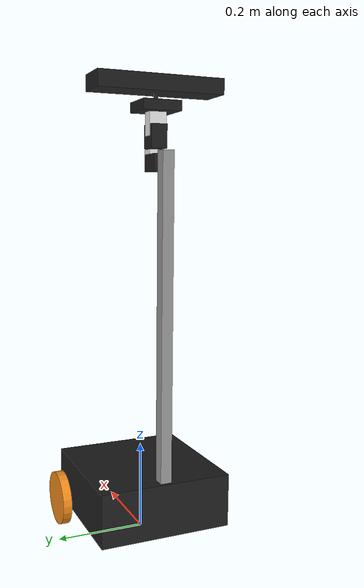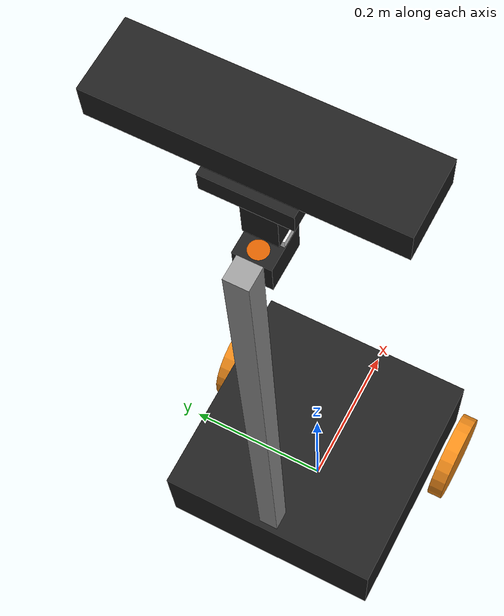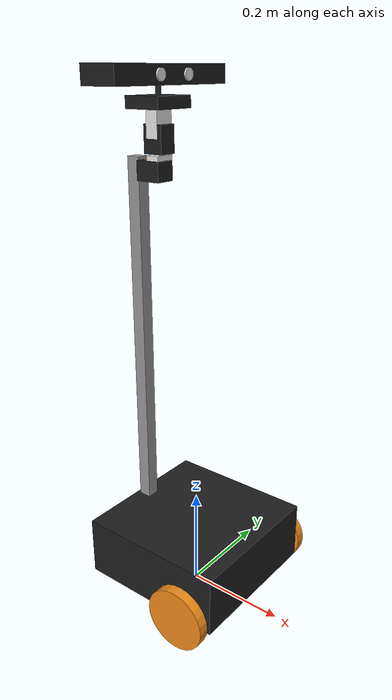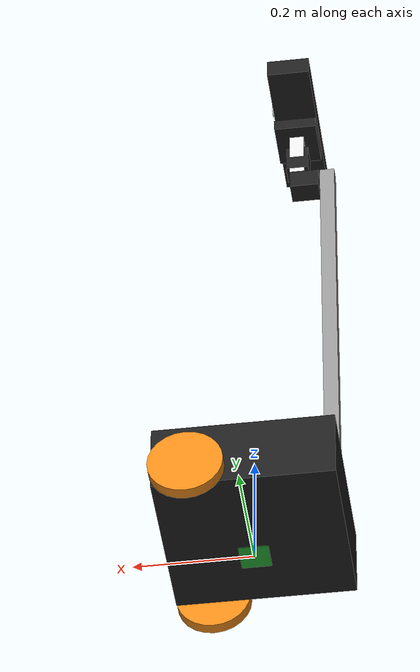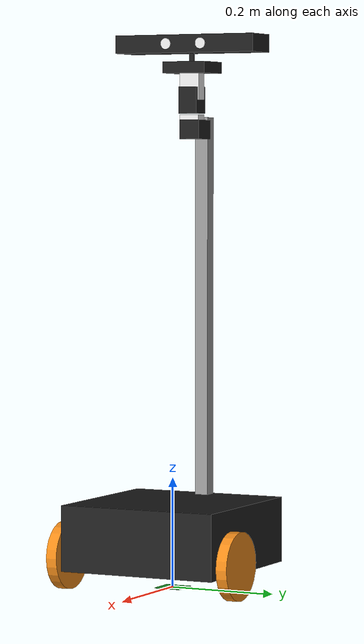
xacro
<?xml version="1.0"?>

<robot name="box_robot" xmlns:xacro="http://ros.org/wiki/xacro">

   <!-- Define a number of dimensions using properties -->
   <property name="torso_offset_x" value="-0.13" />
   <property name="torso_offset_y" value="0.0" />
   <property name="torso_offset_z" value="0.41" />

   <property name="head_offset_x" value="0.0275" />
   <property name="head_offset_y" value="0.0" />
   <property name="head_offset_z" value="0.345" />

   <!-- Include all component files -->
   <xacro:include filename="$(find rbx2_description)/urdf/materials.urdf.xacro" />
   <xacro:include filename="$(find rbx2_description)/urdf/box_robot/base.urdf.xacro" />
   <xacro:include filename="$(find rbx2_description)/urdf/box_robot/torso.urdf.xacro" />
   <xacro:include filename="$(find rbx2_description)/urdf/box_robot/box_pan_tilt_head.urdf.xacro" />

   <!-- Add the base and wheels -->
   <base name="base" color="Black"/>

   <!-- Attach the torso -->
   <torso name="torso" parent="base" color="Grey">
      <origin xyz="${torso_offset_x} ${torso_offset_y} ${torso_offset_z}" rpy="0 0 0" />
   </torso>

   <!-- Attach the pan and tilt head -->
   <head name="head_base" parent="torso" color="White">
      <origin xyz="${head_offset_x} ${head_offset_y} ${head_offset_z}" rpy="0 0 ${PI}" />
   </head>

</robot>

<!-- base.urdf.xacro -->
<robot name="base" xmlns:xacro="http://ros.org/wiki/xacro">

  <!-- Define a number of dimensions using properties -->
  <property name="base_size_x" value="0.30" />
  <property name="base_size_y" value="0.30" />
  <property name="base_size_z" value="0.12" />
  <property name="wheel_length" value="0.02032" />
  <property name="wheel_radius" value="0.06191" />
  <property name="wheel_offset_x" value="0.09" />
  <property name="wheel_offset_y" value="0.17" />
  <property name="wheel_offset_z" value="-0.038" />

  <property name="PI" value="3.1415" />

  <!-- define a wheel -->
  <macro name="wheel" params="suffix parent reflect color">
    <joint name="${parent}_${suffix}_wheel_joint" type="continuous">
      <axis xyz="0 0 1" />
      <limit effort="100" velocity="100"/>
      <safety_controller k_velocity="10" />
      <origin xyz="${wheel_offset_x} ${reflect*wheel_offset_y} ${wheel_offset_z}" rpy="${reflect*PI/2} 0 0" />
      <parent link="${parent}_link"/>
      <child link="${parent}_${suffix}_wheel_link"/>
    </joint>
    <link name="${parent}_${suffix}_wheel_link">
      <visual>
        <origin xyz="0 0 0" rpy="0 0 0" />
        <geometry>
          <cylinder radius="${wheel_radius}" length="${wheel_length}"/>
        </geometry>
        <material name="${color}" />
      </visual>
    </link>
  </macro>

  <!-- The base xacro macro -->
  <macro name="base" params="name color">
    <link name="${name}_link">
      <visual>
        <origin xyz="0 0 0" rpy="0 0 0" />
        <geometry>
          <box size="${base_size_x} ${base_size_y} ${base_size_z}" />
        </geometry>
        <material name="${color}" />
      </visual>
      <collision>
        <origin xyz="0 0 0" rpy="0 0 0" />
        <geometry>
          <box size="${base_size_x} ${wheel_offset_y*2 + wheel_length} ${base_size_z}" />
        </geometry>
      </collision>
    </link>
  </macro>

  <link name="base_footprint">
      <visual>
        <origin xyz="0 0 0" rpy="0 0 0" />
        <geometry>
          <box size="0.05 0.05 0.001" />
        </geometry>
        <material name="TransparentGreen" />
      </visual>
  </link>

  <joint name="base_joint" type="fixed">
    <origin xyz="0 0 ${base_size_z/2 - wheel_offset_z}" rpy="0 0 0" />
    <parent link="base_footprint"/>
    <child link="base_link" />
  </joint>

   <!-- Add the drive wheels -->
   <wheel parent="base" suffix="l" reflect="1" color="Orange"/>
   <wheel parent="base" suffix="r" reflect="-1" color="Orange"/>

</robot>

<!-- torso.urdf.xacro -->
<robot name="torso" xmlns:xacro="http://ros.org/wiki/xacro">

  <!-- Define a number of dimensions using properties -->
  <property name="torso_size_x" value="0.0254" />
  <property name="torso_size_y" value="0.0254" />
  <property name="torso_size_z" value="0.7" />

  <!-- Define the torso -->
  <macro name="torso" params="parent name color *origin">
    <joint name="${parent}_${name}_joint" type="fixed">
      <xacro:insert_block name="origin" />
      <parent link="${parent}_link"/>
      <child link="${name}_link"/>
    </joint>
    <link name="${name}_link">
      <visual>
        <origin xyz="0 0 0" rpy="0 0 0" />
        <geometry>
          <box size="${torso_size_x} ${torso_size_y} ${torso_size_z}" />
        </geometry>
        <material name="${color}" />
      </visual>
      <collision>
        <origin xyz="0 0 0" rpy="0 0 0" />
        <geometry>
          <box size="${torso_size_x} ${torso_size_y} ${torso_size_z}" />
        </geometry>
      </collision>
    </link>
  </macro>

</robot>

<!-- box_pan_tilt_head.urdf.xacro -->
<robot name="pan_tilt_head" xmlns:xacro="http://ros.org/wiki/xacro">

  <property name="camera_offset_x" value="0.0" />
  <property name="camera_offset_y" value="0.0" />
  <property name="camera_offset_z" value="0.0345" />

  <xacro:include filename="$(find rbx2_description)/urdf/box_robot/dynamixel_box_head_hardware.xacro" />
  <xacro:include filename="$(find rbx2_description)/urdf/box_robot/kinect_box.urdf.xacro" />

  <!-- The head macro includes the pan and tilt servos with the camera attached to the head_tilt_bracket link -->
  <macro name="head" params="parent name color *origin">
    <!-- head base joint -->
    <joint name="${name}_joint" type="fixed">
      <xacro:insert_block name="origin" />
      <parent link="${parent}_link"/>
      <child link="${name}_link" />
    </joint>
    <link name="${name}_link">
      <origin xyz="0 0 0" rpy="0 0 0" />
      <inertial>
        <mass value="0.00001" />
        <inertia ixx="1.0" ixy="0.0" ixz="0.0"
          iyy="1.0" iyz="0.0"
          izz="1.0" />
      </inertial>

      <visual>
        <origin xyz="0 0 0 " rpy="0 0 0" />
        <geometry>
           <cylinder length="0.00001" radius="0.01" />
        </geometry>
      </visual>

      <collision>
        <origin xyz="0 0 0 " rpy="0 0 0" />
        <geometry>
           <cylinder length="0.00001" radius="0.01" />
        </geometry>
      </collision>
    </link>

    <!-- head pan -->
    <dynamixel_AX12_fixed parent="head_base" name="head_pan_servo">
       <origin xyz="-0.012 0 ${-AX12_WIDTH/2}" rpy="${PI/2} 0 ${-PI/2}"/>
    </dynamixel_AX12_fixed>

    <bioloid_F3_head_revolute parent="head_pan_servo" name="head_pan_bracket" joint_name="head_pan" llimit="-2.53" ulimit="2.53" vlimit="1.571" color="${color}">
       <origin xyz="0 ${AX12_WIDTH/2 + 0.005} 0.012" rpy="${-PI/2} ${PI/2} ${PI}" />
       <axis xyz="0 0 -1" />
    </bioloid_F3_head_revolute>

    <!--head tilt -->
    <dynamixel_AX12_fixed parent="head_pan_bracket" name="head_tilt_servo">
       <origin xyz="0 0 -0.031" rpy="0 ${PI} 0"/>
    </dynamixel_AX12_fixed>

    <bioloid_F2_head_revolute parent="head_tilt_servo" name="head_tilt_bracket" joint_name="head_tilt" llimit="-2.53" ulimit="2.53" vlimit="1.571" color="${color}" >
       <origin xyz="0 0 0.025" rpy="0 0 0" />
       <axis xyz="0 1 0" />
    </bioloid_F2_head_revolute>

   <link name="left_eye_link">
     <visual>
       <origin xyz="0 0 0" rpy="0 1.57 0" />
	   <geometry>
	      <cylinder length="0.01" radius="0.01" />
	   </geometry>
	  <material name="OffWhite" />
	 </visual>
     <collision>
	   <origin xyz="0 0 0" rpy="0 1.57 0" />
	   <geometry>
         <cylinder length="0.01" radius="0.01" />
       </geometry>
     </collision>
     <inertial>
        <mass value="0.00001" />
        <origin xyz="0 0 0" />
        <inertia ixx="1.0" ixy="0.0" ixz="0.0"
          iyy="1.0" iyz="0.0"
          izz="1.0" />
      </inertial>
   </link>

   <link name="right_eye_link">
     <visual>
       <origin xyz="0 0 0" rpy="0 1.57 0" />
	   <geometry>
	      <cylinder length="0.01" radius="0.01" />
	   </geometry>
	   <material name="OffWhite" />
	 </visual>
     <collision>
	   <origin xyz="0 0 0" rpy="0 1.57 0" />
	   <geometry>
         <cylinder length="0.01" radius="0.01" />
       </geometry>
     </collision>
     <inertial>
        <mass value="0.00001" />
        <origin xyz="0 0 0" />
        <inertia ixx="1.0" ixy="0.0" ixz="0.0"
          iyy="1.0" iyz="0.0"
          izz="1.0" />
      </inertial>
   </link>

   <joint name="left_eye_joint" type="fixed">
     <parent link="camera_link" />
     <child link="left_eye_link" />
     <origin xyz="${kinect_body_x/2 - 0.002} 0.035 0" rpy="0 0 0" />
   </joint>

   <joint name="right_eye_joint" type="fixed">
     <parent link="camera_link" />
     <child link="right_eye_link" />
     <origin xyz="${kinect_body_x/2 - 0.002} -0.035 0" rpy="0 0 0" />
   </joint>

   <!-- Attach the camera -->
   <camera name="camera" parent="head_tilt_bracket" color="Black">
      <origin xyz="${camera_offset_x} ${camera_offset_y} ${camera_offset_z}" rpy="0 0 0" />
   </camera>

 </macro>

</robot>

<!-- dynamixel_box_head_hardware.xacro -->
<robot name="head_hardware" xmlns:xacro="http://ros.org/wiki/xacro">

  <property name="PI" value="3.14159"/>
  <property name="DYNAMIXEL_MESH_SCALE" value="0.001"/>

  <property name="F4_WIDTH" value="0.0480"/>
  <property name="F4_HEIGHT" value="0.0625"/>
  <property name="F4_DEPTH" value="0.0245"/>

  <property name="F2_DEPTH" value="0.0245"/>
  <property name="F2_WIDTH" value="0.0480"/>
  <property name="F2_HEIGHT" value="0.0380"/>

  <property name="F3_WIDTH" value="0.038"/>
  <property name="F3_HEIGHT" value="0.009"/>
  <property name="F3_DEPTH" value="0.025"/>

  <property name="AX12_HEIGHT" value="0.0385"/>
  <property name="AX12_WIDTH" value="0.035"/>
  <property name="AX12_DEPTH" value="0.049"/>

  <macro name="bioloid_F3_fixed" params="parent name color *origin">
    <joint name="${name}_joint" type="fixed">
      <xacro:insert_block name="origin" />
      <parent link="${parent}_link"/>
      <child link="${name}_link" />
    </joint>

    <link name="${name}_link">
      <inertial>
        <mass value="0.00001" />
        <origin xyz="0 0 0" />
        <inertia ixx="1.0" ixy="0.0" ixz="0.0"
          iyy="1.0" iyz="0.0"
          izz="1.0" />
      </inertial>

      <visual>
        <origin xyz="0 0 0 " rpy="0 0 0" />
        <geometry>
          <box size="${F3_HEIGHT} ${F3_WIDTH} ${F3_DEPTH}"/>
        </geometry>
        <material name="${color}"/>
      </visual>

      <collision>
        <origin xyz="0 0 0" rpy="0 0 0" />
        <geometry>
          <box size="${F3_WIDTH} ${F3_HEIGHT} ${F3_DEPTH}"/>
        </geometry>
      </collision>
    </link>
  </macro>

  <macro name="dynamixel_AX12_fixed" params="parent name *origin">
    <joint name="${name}_joint" type="fixed">
      <xacro:insert_block name="origin" />
      <parent link="${parent}_link"/>
      <child link="${name}_link" />
    </joint>

    <link name="${name}_link">
      <inertial>
        <mass value="0.00001" />
        <origin xyz="0 0 0" />
        <inertia ixx="1.0" ixy="0.0" ixz="0.0"
          iyy="1.0" iyz="0.0"
          izz="1.0" />
      </inertial>

      <visual>
        <origin xyz="0 0 0" rpy="0 0 0" />
        <geometry>
          <box size="${AX12_HEIGHT} ${AX12_WIDTH} ${AX12_DEPTH}"/>
        </geometry>
        <material name="Black"/>
      </visual>

      <collision>
        <origin xyz="0 0 -0.01241" rpy="0 0 0" />
        <geometry>
          <box size="${AX12_HEIGHT} ${AX12_WIDTH} ${AX12_DEPTH}"/>
        </geometry>
      </collision>
    </link>
  </macro>

  <macro name="bioloid_F3_head_revolute" params="parent name joint_name llimit ulimit vlimit color *origin *axis">
    <joint name="${joint_name}_joint" type="revolute">
      <xacro:insert_block name="origin" />
      <xacro:insert_block name="axis" />
      <parent link="${parent}_link"/>
      <limit lower="${llimit}" upper="${ulimit}" velocity="${vlimit}" effort="1.0" />
      <child link="${name}_link" />
    </joint>

    <link name="${name}_link">
      <inertial>
        <mass value="0.00001" />
        <origin xyz="0 0 0" />
        <inertia ixx="1.0" ixy="0.0" ixz="0.0"
          iyy="1.0" iyz="0.0"
          izz="1.0" />
      </inertial>

      <visual>
        <origin xyz="0 0 0 " rpy="0 0 0" />
        <geometry>
           <box size="${F3_DEPTH} ${F3_WIDTH} ${F3_HEIGHT}"/>
        </geometry>
        <material name="${color}"/>
      </visual>

      <collision>
        <origin xyz="0 0 0" rpy="0 0 0" />
        <geometry>
           <box size="${F3_DEPTH} ${F3_WIDTH} ${F3_HEIGHT}"/>
        </geometry>
      </collision>
    </link>
  </macro>

  <macro name="bioloid_F2_head_revolute" params="parent name joint_name llimit ulimit vlimit color *origin *axis">
    <joint name="${joint_name}_joint" type="revolute">
      <xacro:insert_block name="origin" />
      <xacro:insert_block name="axis" />
      <parent link="${parent}_link"/>
      <limit lower="${llimit}" upper="${ulimit}" velocity="${vlimit}" effort="1.0" />
      <child link="${name}_link" />
    </joint>

    <link name="${name}_link">
      <inertial>
        <mass value="0.00001" />
        <origin xyz="0 0 0" />
        <inertia ixx="1.0" ixy="0.0" ixz="0.0"
          iyy="1.0" iyz="0.0"
          izz="1.0" />
      </inertial>

      <visual>
        <origin xyz="0 0 0 " rpy="0 0 0" />
        <geometry>
          <box size="${F2_DEPTH} ${F2_HEIGHT} ${F2_WIDTH}"/>
        </geometry>
        <material name="${color}"/>
      </visual>

      <collision>
        <origin xyz="0 0 0" rpy="0 0 0" />
        <geometry>
          <box size="${F2_DEPTH} ${F2_HEIGHT} ${F2_WIDTH}"/>
        </geometry>
      </collision>
    </link>
  </macro>

</robot>

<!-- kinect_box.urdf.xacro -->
<robot name="kinect" xmlns:xacro="http://ros.org/wiki/xacro">

   <!-- Define a number of dimensions using properties -->
   <property name="kinect_body_x" value="0.07271" />
   <property name="kinect_body_y" value="0.27794" />
   <property name="kinect_body_z" value="0.033" />

   <property name="kinect_base_x" value="0.072" />
   <property name="kinect_base_y" value="0.085" />
   <property name="kinect_base_z" value="0.021" />

   <property name="kinect_base_post_height" value="0.016" />
   <property name="kinect_base_post_radius" value="0.005" />

   <property name="PI" value="3.1415" />

   <!-- Define a box-shaped camera link for the Kinect -->
   <macro name="camera" params="parent name color *origin">
      <joint name="${parent}_${name}_joint" type="fixed">
         <xacro:insert_block name="origin" />
         <parent link="${parent}_link"/>
         <child link="${name}_base_link"/>
      </joint>

      <link name="${name}_base_link">
         <visual>
            <origin xyz="0 0.0 0.0" rpy="0 0 0" />
            <geometry>
               <box size="${kinect_base_x} ${kinect_base_y} ${kinect_base_z}"/>
            </geometry>
            <material name="${color}" />
         </visual>
         <collision>
            <origin xyz="0 0 0" rpy="0 0 0" />
            <geometry>
               <box size="${kinect_base_x} ${kinect_base_y} ${kinect_base_z}"/>
            </geometry>
         </collision>
      </link>

      <joint name="${name}_base_post_joint" type="fixed">
         <origin xyz="0 0 ${(kinect_base_z + kinect_base_post_height)/2}" rpy="0 0 0" />
         <parent link="${name}_base_link" />
         <child link="${name}_base_post_link" />
      </joint>

      <link name="${name}_base_post_link">
         <visual>
            <origin xyz="0 0 0" rpy="0 0 0" />
            <geometry>
               <cylinder radius="${kinect_base_post_radius}" length="${kinect_base_post_height}"/>
            </geometry>
            <material name="${color}" />
         </visual>
         <collision>
            <origin xyz="0 0 0" rpy="0 0 0" />
            <geometry>
               <cylinder radius="${kinect_base_post_radius}" length="${kinect_base_post_height}"/>
            </geometry>
         </collision>
      </link>

      <joint name="${name}_base_joint" type="fixed">
         <origin xyz="0 0 ${(kinect_base_post_height + kinect_body_z)/2}" rpy="0 0 0" />
         <parent link="${name}_base_post_link" />
         <child link="${name}_link" />
      </joint>

      <link name="${name}_link">
         <visual>
            <origin xyz="0 0 0" rpy="0 0 0" />
            <geometry>
               <box size="${kinect_body_x} ${kinect_body_y} ${kinect_body_z}"/>
            </geometry>
            <material name="${color}" />
         </visual>
         <collision>
            <origin xyz="0 0 0" rpy="0 0 0" />
            <geometry>
               <box size="${kinect_body_x} ${kinect_body_y} ${kinect_body_z}"/>
            </geometry>
         </collision>
      </link>

      <joint name="${name}_depth_joint" type="fixed">
         <origin xyz="0 0.0125 0" rpy="0 0 0" />
          <parent link="${name}_link" />
          <child link="${name}_depth_frame" />
      </joint>

      <link name="${name}_depth_frame">
      <inertial>
         <mass value="0.000001" />
         <origin xyz="0 0 0" />
         <inertia ixx="0.0001" ixy="0.0" ixz="0.0"
            iyy="0.0001" iyz="0.0"
            izz="0.0001" />
         </inertial>
      </link>

      <joint name="${name}_depth_optical_joint" type="fixed">
         <origin xyz="0 0 0" rpy="${-PI/2} 0 ${-PI/2}" />
         <parent link="${name}_depth_frame" />
         <child link="${name}_depth_optical_frame" />
      </joint>

      <link name="${name}_depth_optical_frame">
         <inertial>
            <mass value="0.000001" />
            <origin xyz="0 0 0" />
            <inertia ixx="0.0001" ixy="0.0" ixz="0.0"
               iyy="0.0001" iyz="0.0"
               izz="0.0001" />
         </inertial>
      </link>

      <joint name="${name}_rgb_joint" type="fixed">
         <origin xyz="0 -0.0125 0" rpy="0 0 0" />
         <parent link="${name}_link" />
         <child link="${name}_rgb_frame" />
      </joint>

      <link name="${name}_rgb_frame">
         <inertial>
         <mass value="0.000001" />
         <origin xyz="0 0 0" />
         <inertia ixx="0.0001" ixy="0.0" ixz="0.0"
            iyy="0.0001" iyz="0.0"
            izz="0.0001" />
         </inertial>
      </link>

      <joint name="${name}_rgb_optical_joint" type="fixed">
         <origin xyz="0 0 0" rpy="${-PI/2} 0 ${-PI/2}" />
         <parent link="${name}_rgb_frame" />
         <child link="${name}_rgb_optical_frame" />
      </joint>

      <link name="${name}_rgb_optical_frame">
         <inertial>
            <mass value="0.000001" />
            <origin xyz="0 0 0" />
            <inertia ixx="0.0001" ixy="0.0" ixz="0.0"
               iyy="0.0001" iyz="0.0"
               izz="0.0001" />
         </inertial>
      </link>

   </macro>

</robot>
